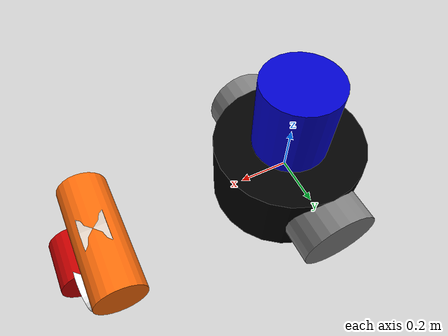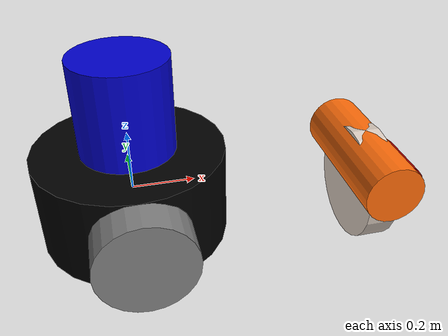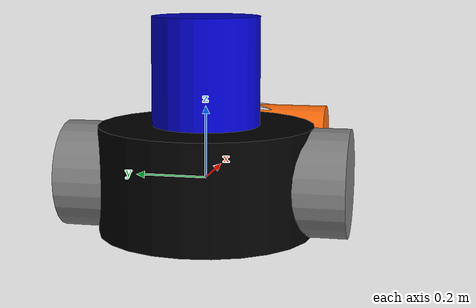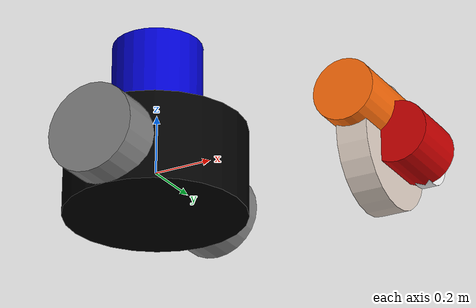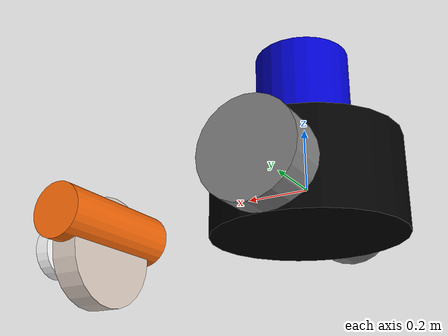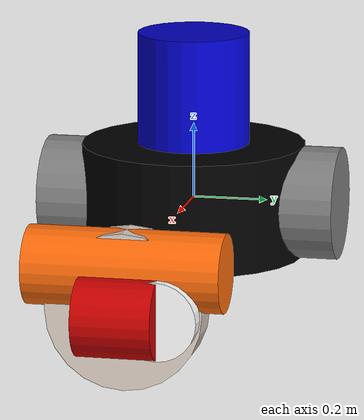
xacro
<?xml version="1.0" encoding="UTF-8"?>
<robot xmlns:xacro="http://wiki.ros.org/xacro" name="myrobot">

  <!-- Use this if parameters are set from the launch file, otherwise delete -->
  <xacro:arg name="prefix" default="" />

  <xacro:arg name="use_mock_hardware" default="false" />
  <xacro:arg name="mock_sensor_commands" default="false" />
  <xacro:arg name="sim_gazebo_classic" default="false" />
  <xacro:arg name="sim_gazebo" default="false" />
  <xacro:arg name="simulation_controllers" default="" />

  <xacro:include filename="$(find myrobot_description)/urdf/myrobot/myrobot_macro.xacro"/>
  <xacro:include filename="$(find myrobot_description)/urdf/myrobot/myrobot_macro.ros2_control.xacro"/>

  <!-- create link fixed to the "world" -->
  <link name="world" />

  <!-- Load robot's macro with parameters -->
  <!-- set prefix if multiple robots are used -->
  <xacro:myrobot prefix="$(arg prefix)" parent="world" >
    <origin xyz="0 0 0" rpy="0 0 0" />          <!-- position robot in the world -->
  </xacro:myrobot>

  <xacro:myrobot_ros2_control
    name="myrobot"
    prefix="$(arg prefix)"
    use_mock_hardware="$(arg use_mock_hardware)"
    mock_sensor_commands="$(arg mock_sensor_commands)"
    sim_gazebo_classic="$(arg sim_gazebo_classic)"
    sim_gazebo="$(arg sim_gazebo)"
    simulation_controllers="$(arg simulation_controllers)" />

</robot>

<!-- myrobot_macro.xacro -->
<robot xmlns:xacro="http://wiki.ros.org/xacro">

  <xacro:include filename="$(find myrobot_description)/urdf/common/inertials.xacro" />
  <xacro:include filename="$(find myrobot_description)/urdf/common/materials.xacro" />

  <xacro:macro name="myrobot" params="prefix parent *origin">
    <!-- LINKS -->
    <!-- base link -->
    <link name="${prefix}base_link">
      <!-- Default inertial for Gazebo - copy and edit block from 'common.xacro'
           to get more realistic behavior -->
      <xacro:default_inertial/>
      <visual>
        <origin xyz="0 0 0" rpy="0 0 0" />
        <geometry>
          <cylinder length="0.3" radius="0.3" />
        </geometry>
        <material name="black"/>
      </visual>
      <collision>
        <origin xyz="0 0 0" rpy="0 0 0" />
        <geometry>
          <cylinder length="0.3" radius="0.3" />
        </geometry>
      </collision>
    </link>
    <!-- link 1 -->
    <link name="${prefix}link1">
      <!-- Default inertial for Gazebo - copy and edit block from 'common.xacro'
           to get more realistic behavior -->
      <xacro:default_inertial/>
      <visual>
        <origin xyz="0 0 0" rpy="0 0 0" />
        <geometry>
          <cylinder length="0.3" radius="0.15" />
        </geometry>
        <material name="blue"/>
      </visual>
      <collision>
        <origin xyz="0 0 0" rpy="0 0 0" />
        <geometry>
          <cylinder length="0.3" radius="0.15" />
        </geometry>
        <material name="green"/>
      </collision>
    </link>
    <!-- link 2 -->
    <link name="${prefix}link2">
      <!-- Default inertial for Gazebo - copy and edit block from 'common.xacro'
           to get more realistic behavior-->
      <xacro:default_inertial/>
      <visual>
        <origin xyz="0 0 0" rpy="0 0 0" />
        <geometry>
          <cylinder length="0.8" radius="0.15" />
        </geometry>
        <material name="grey"/>
      </visual>
      <collision>
        <origin xyz="0 0 0" rpy="0 0 0" />
        <geometry>
          <cylinder length="0.8" radius="0.15" />
        </geometry>
      </collision>
    </link>
    <!-- link 3 -->
    <link name="${prefix}link3">
      <!-- Default inertial for Gazebo - copy and edit block from 'common.xacro'
           to get more realistic behavior-->
      <xacro:default_inertial/>
      <visual>
        <origin xyz="0 0 0" rpy="0 0 0" />
        <geometry>
          <cylinder length="0.5" radius="0.10" />
        </geometry>
        <material name="orange"/>
      </visual>
      <collision>
        <origin xyz="0 0 0" rpy="0 0 0" />
        <geometry>
          <cylinder length="0.5" radius="0.10" />
        </geometry>
      </collision>
    </link>
    <!-- link 4 -->
    <link name="${prefix}link4">
      <!-- Default inertial for Gazebo - copy and edit block from 'common.xacro'
           to get more realistic behavior-->
      <xacro:default_inertial/>
      <visual>
        <origin xyz="0 0 0" rpy="0 0 0" />
        <geometry>
          <cylinder length="0.1" radius="0.2" />
        </geometry>
        <material name="brown"/>
      </visual>
      <collision>
        <origin xyz="0 0 0" rpy="0 0 0" />
        <geometry>
          <cylinder length="0.1" radius="0.2" />
        </geometry>
      </collision>
    </link>
    <!-- link 5 -->
    <link name="${prefix}link5">
      <!-- Default inertial for Gazebo - copy and edit block from 'common.xacro'
           to get more realistic behavior-->
      <xacro:default_inertial/>
      <visual>
        <origin xyz="0 0 0" rpy="0 0 0" />
        <geometry>
          <cylinder length="0.2" radius="0.1" />
        </geometry>
        <material name="red"/>
      </visual>
      <collision>
        <origin xyz="0 0 0" rpy="0 0 0" />
        <geometry>
          <cylinder length="0.2" radius="0.1" />
        </geometry>
      </collision>
    </link>
    <!-- link 6 -->
    <link name="${prefix}link6">
      <!-- Default inertial for Gazebo - copy and edit block from 'common.xacro'
           to get more realistic behavior-->
      <xacro:default_inertial/>
      <visual>
        <origin xyz="0 0 0" rpy="0 0 0" />
        <geometry>
          <cylinder length="0.05" radius="0.1" />
        </geometry>
        <material name="white"/>
      </visual>
      <collision>
        <origin xyz="0 0 0" rpy="0 0 0" />
        <geometry>
          <cylinder length="0.05" radius="0.1" />
        </geometry>
      </collision>
    </link>

    <!-- All-zero tool frame. This frame should correspond to the TOOL frame of the robot's controller.) -->
    <link name="${prefix}tool0" />
    <!-- tool link -->

<!-- START Delete if not needed -->
    <!-- This frame should correspond to the BASE coordinate system of robot's controller.) -->
    <link name="${prefix}base" />
    <!-- Frame for mounting EEF models to a manipulator. x+ axis points forward (REP 103). -->
    <link name="${prefix}flange" />
<!-- END Delete if not needed  -->
    <!-- END LINKS -->

    <!-- JOINTS -->
    <!-- base_joint fixes base_link to the environment -->
    <joint name="${prefix}base_joint" type="fixed">
      <xacro:insert_block name="origin" />
      <parent link="${parent}" />
      <child link="${prefix}base_link" />
    </joint>
    <!-- joint 1 -->
    <joint name="${prefix}joint1" type="revolute">
      <origin xyz="0 0 0.3" rpy="${pi} 0 0" />
      <parent link="${prefix}base_link" />
      <child link="${prefix}link1" />
      <axis xyz="0 0 1" />
      <limit effort="0" lower="${radians(-180)}" upper="${radians(180)}" velocity="${radians(180)}" />
    </joint>
    <!-- joint 2 -->
    <joint name="${prefix}joint2" type="revolute">
      <origin xyz="0 0 0.3" rpy="${pi/2} 0 0" />
      <parent link="${prefix}link1" />
      <child link="${prefix}link2" />
      <axis xyz="0 0 1" />
      <limit effort="0" lower="${radians(-180)}" upper="${radians(180)}" velocity="${radians(180)}" />
    </joint>
    <!-- joint 3 -->
    <joint name="${prefix}joint3" type="revolute">
      <origin xyz="0.8 0 0" rpy="0 0 0" />
      <parent link="${prefix}link2" />
      <child link="${prefix}link3" />
      <axis xyz="0 0 1" />
      <limit effort="0" lower="${radians(-90)}" upper="${radians(180)}" velocity="${radians(270)}" />
    </joint>
    <!-- joint 4 -->
    <joint name="${prefix}joint4" type="revolute">
      <origin xyz="0 0.1 0" rpy="0 ${-pi/2} 0" />
      <parent link="${prefix}link3" />
      <child link="${prefix}link4" />
      <axis xyz="0 0 1" />
      <limit effort="0" lower="${radians(-360)}" upper="${radians(360)}" velocity="${radians(360)}" />
    </joint>
    <!-- joint 5 -->
    <joint name="${prefix}joint5" type="revolute">
      <origin xyz="0 0 -0.1" rpy="0 ${pi/2} 0" />
      <parent link="${prefix}link4" />
      <child link="${prefix}link5" />
      <axis xyz="0 0 1" />
      <limit effort="0" lower="${radians(-120)}" upper="${radians(120)}" velocity="${radians(540)}" />
    </joint>
    <!-- joint 6 -->
    <joint name="${prefix}joint6" type="revolute">
      <origin xyz="0 0 0.1" rpy="0 ${-pi/2} 0" />
      <parent link="${prefix}link5" />
      <child link="${prefix}link6" />
      <axis xyz="0 0 1" />
      <limit effort="0" lower="${radians(-360)}" upper="${radians(360)}" velocity="${radians(720)}" />
    </joint>

    <!-- tool frame - fixed frame -->
    <joint name="${prefix}joint6-tool0" type="fixed">
      <parent link="${prefix}link6" />
      <child link="${prefix}tool0" />
      <origin xyz="0 0 -0.115" rpy="0 ${-pi} ${-pi/2}" />
    </joint>
    <!-- END JOINTS -->

<!-- START Delete if not needed -->
    <joint name="${prefix}base_link-base_joint" type="fixed">
      <origin xyz="0 0 0" rpy="0 0 0" />
      <parent link="${prefix}base_link" />
      <child link="${prefix}base" />
    </joint>

    <joint name="${prefix}tool0-flange_joint" type="fixed">
      <origin xyz="0 0 0" rpy="0 0 0" />
      <parent link="${prefix}tool0" />
      <child link="${prefix}flange" />
    </joint>
<!-- END Delete if not needed  -->

  </xacro:macro>
</robot>

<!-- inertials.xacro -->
<robot xmlns:xacro="http://www.ros.org/wiki/xacro">

  <!-- see https://secure.wikimedia.org/wikipedia/en/wiki/List_of_moment_of_inertia_tensors -->
  <xacro:macro name="sphere_inertial" params="radius mass *origin">
    <inertial>
      <mass value="${mass}"/>
      <xacro:insert_block name="origin"/>
      <inertia ixx="${2.0/5 * mass * radius * radius}" ixy="0.0" ixz="0.0"
        iyy="${2.0/5 * mass * radius * radius}" iyz="0.0"
        izz="${2.0/5 * mass * radius * radius}"/>
    </inertial>
  </xacro:macro>

  <xacro:macro name="cylinder_inertial" params="radius length mass *origin">
    <inertial>
      <mass value="${mass}"/>
      <xacro:insert_block name="origin"/>
      <inertia ixx="${1.0/12 * mass * (3 * radius * radius + length * length)}" ixy="0.0" ixz="0.0"
        iyy="${1.0/12 * mass * (3 * radius * radius + length * length)}" iyz="0.0"
        izz="${1.0/2 * mass * radius * radius}"/>
    </inertial>
  </xacro:macro>

  <xacro:macro name="box_inertial" params="x y z mass *origin">
    <inertial>
      <mass value="${mass}"/>
      <xacro:insert_block name="origin"/>
      <inertia ixx="${1.0/12 * mass * (y*y + z*z)}" ixy="0.0" ixz="0.0"
        iyy="${1.0/12 * mass * (x*x + z*z)}" iyz="0.0"
        izz="${1.0/12 * mass * (x*x + y*y)}"/>
    </inertial>
  </xacro:macro>

  <xacro:macro name="spherical_cap_inertial" params="r h mass *origin">
    <inertial>
      <mass value="${mass}"/>
      <xacro:insert_block name="origin"/>
      <inertia ixx="${(-3*h*h*h/20+3*h*h*r/4-4*h*r*r/3+r*r*r)*3*mass/(3*r-h)+(3/4*(h-2*r)*(h-2*r)/(3*r-h))*(3/4*(h-2*r)*(h-2*r)/(3*r-h))}" ixy="0.0"
        ixz="0.0"
        iyy="${(-3*h*h*h/20+3*h*h*r/4-4*h*r*r/3+r*r*r)*3*mass/(3*r-h)+(3/4*(h-2*r)*(h-2*r)/(3*r-h))*(3/4*(h-2*r)*(h-2*r)/(3*r-h))}" iyz="0.0"
        izz="${mass*h/(10*(3*r-h))*(3*h*h-15*h*r+20*r*r)}"/>
      <origin></origin>
    </inertial>
  </xacro:macro>

  <xacro:macro name="hollow_spherical_cap_inertial" params="r h t mass *origin">
    <inertial>
      <mass value="${mass}"/>
      <xacro:insert_block name="origin"/>
      <inertia
        ixx="${mass/20*(20*h*h*h*r-10*h*h*h*t-60*h*h*r*r+30*h*h*r*t+120*h*r*r*r-120*h*r*r*t+60*h*r*t*t-15*h*t*t*t-60*r*r*r*t+100*r*r*t*t-65*r*t*t*t+16*t*t*t*t)/(2*t*t*-3*r*t-3*h*t+6*h*r)+(3/4*(t-2*r)*(2*r*r-4*r*r+2*r*t-t*t)/(6*r*r-3*r*t-3*r*t+2*t*t))*(3/4*(t-2*r)*(2*r*r-4*r*r+2*r*t-t*t)/(6*r*r-3*r*t-3*r*t+2*t*t))}"
        ixy="0.0" ixz="0.0"
        iyy="${mass/20*(20*h*h*h*r-10*h*h*h*t-60*h*h*r*r+30*h*h*r*t+120*h*r*r*r-120*h*r*r*t+60*h*r*t*t-15*h*t*t*t-60*r*r*r*t+100*r*r*t*t-65*r*t*t*t+16*t*t*t*t)/(2*t*t*-3*r*t-3*h*t+6*h*r)+(3/4*(t-2*r)*(2*r*r-4*r*r+2*r*t-t*t)/(6*r*r-3*r*t-3*r*t+2*t*t))*(3/4*(t-2*r)*(2*r*r-4*r*r+2*r*t-t*t)/(6*r*r-3*r*t-3*r*t+2*t*t))}"
        iyz="0.0"
        izz="${mass/(10*(2*t*t-3*r*t-3*h*t+6*h*r))*(-20*h*h*h*r+10*h*h*h*t+60*h*h*r*r-30*h*h*r*t-60*h*r*r*t+60*h*r*t*t-15*h*t*t*t+20*r*r*t*t-25*r*t*t*t+8*t*t*t*t)}"/>
    </inertial>
  </xacro:macro>

  <xacro:macro name="default_inertial">
    <inertial>
      <mass value="0.01"/>
      <origin xyz="0 0 0"/>
      <inertia ixx="0.001" ixy="0.0" ixz="0.0" iyy="0.001" iyz="0.0" izz="0.001"/>
    </inertial>
  </xacro:macro>

</robot>

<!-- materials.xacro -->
<robot>
  <material name="black">
    <color rgba="0.0 0.0 0.0 1.0"/>
  </material>

  <material name="blue">
    <color rgba="0.0 0.0 0.8 1.0"/>
  </material>

  <material name="green">
    <color rgba="0.0 1.0 0.0 1.0"/>
  </material>

  <material name="dark_grey">
    <color rgba="0.2 0.2 0.2 1.0"/>
  </material>

  <material name="grey">
    <color rgba="0.5 0.5 0.5 1.0"/>
  </material>

  <material name="light_grey">
    <color rgba="0.8 0.8 0.8 1.0"/>
  </material>

  <material name="orange">
    <color rgba="${255/255} ${108/255} ${10/255} 1.0"/>
  </material>

  <material name="brown">
    <color rgba="${222/255} ${207/255} ${195/255} 1.0"/>
  </material>

  <material name="red">
    <color rgba="0.8 0.0 0.0 1.0"/>
  </material>

  <material name="white">
    <color rgba="1.0 1.0 1.0 1.0"/>
  </material>

</robot>
